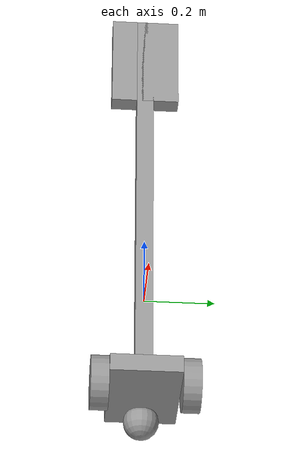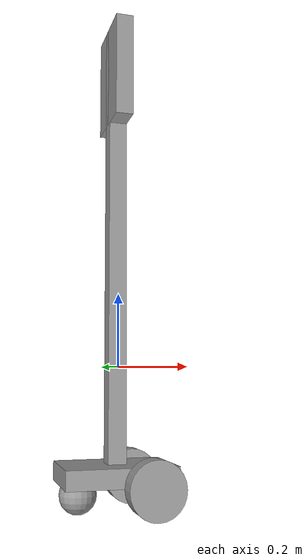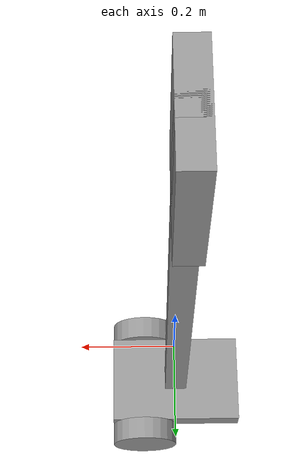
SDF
<?xml version='1.0'?>
<sdf version='1.6'>
  <model name='telepresenceV2'>
    <link name='link_2'>
      <pose frame=''>-0.108333 0 -0.329167 0 -0 0</pose>
      <inertial>
        <mass>1</mass>
        <inertia>
          <ixx>0.1</ixx>
          <ixy>0</ixy>
          <ixz>0</ixz>
          <iyy>0.1</iyy>
          <iyz>0</iyz>
          <izz>0.1</izz>
        </inertia>
        <pose frame=''>0 0 0 0 -0 0</pose>
      </inertial>
      <gravity>1</gravity>
      <self_collide>0</self_collide>
      <kinematic>0</kinematic>
      <visual name='visual'>
        <pose frame=''>0 0 0 0 -0 0</pose>
        <geometry>
          <sphere>
            <radius>0.05</radius>
          </sphere>
        </geometry>
        <material>
          <lighting>1</lighting>
          <script>
            <uri>file://media/materials/scripts/gazebo.material</uri>
            <name>Gazebo/Grey</name>
          </script>
          <ambient>0.3 0.3 0.3 1</ambient>
          <diffuse>0.7 0.7 0.7 1</diffuse>
          <specular>0.01 0.01 0.01 1</specular>
          <emissive>0 0 0 1</emissive>
          <shader type='vertex'>
            <normal_map>__default__</normal_map>
          </shader>
        </material>
        <cast_shadows>1</cast_shadows>
        <transparency>0</transparency>
      </visual>
      <collision name='collision'>
        <laser_retro>0</laser_retro>
        <max_contacts>10</max_contacts>
        <pose frame=''>0 0 0 0 -0 0</pose>
        <geometry>
          <sphere>
            <radius>0.05</radius>
          </sphere>
        </geometry>
        <surface>
          <friction>
            <ode>
              <mu>1</mu>
              <mu2>1</mu2>
              <fdir1>0 0 0</fdir1>
              <slip1>0</slip1>
              <slip2>0</slip2>
            </ode>
            <torsional>
              <coefficient>1</coefficient>
              <patch_radius>0</patch_radius>
              <surface_radius>0</surface_radius>
              <use_patch_radius>1</use_patch_radius>
              <ode>
                <slip>0</slip>
              </ode>
            </torsional>
          </friction>
          <bounce>
            <restitution_coefficient>0</restitution_coefficient>
            <threshold>1e+06</threshold>
          </bounce>
          <contact>
            <collide_without_contact>0</collide_without_contact>
            <collide_without_contact_bitmask>1</collide_without_contact_bitmask>
            <collide_bitmask>1</collide_bitmask>
            <ode>
              <soft_cfm>0</soft_cfm>
              <soft_erp>0.2</soft_erp>
              <kp>1e+13</kp>
              <kd>1</kd>
              <max_vel>0.01</max_vel>
              <min_depth>0</min_depth>
            </ode>
            <bullet>
              <split_impulse>1</split_impulse>
              <split_impulse_penetration_threshold>-0.01</split_impulse_penetration_threshold>
              <soft_cfm>0</soft_cfm>
              <soft_erp>0.2</soft_erp>
              <kp>1e+13</kp>
              <kd>1</kd>
            </bullet>
          </contact>
        </surface>
      </collision>
    </link>
    <link name='link_3'>
      <pose frame=''>0.066667 -0.125007 -0.304167 1.5707 -0 0</pose>
      <inertial>
        <mass>1</mass>
        <inertia>
          <ixx>0.145833</ixx>
          <ixy>0</ixy>
          <ixz>0</ixz>
          <iyy>0.145833</iyy>
          <iyz>0</iyz>
          <izz>0.125</izz>
        </inertia>
        <pose frame=''>0 0 0 0 -0 0</pose>
      </inertial>
      <gravity>1</gravity>
      <self_collide>0</self_collide>
      <kinematic>0</kinematic>
      <visual name='visual'>
        <pose frame=''>0 0 0 0 -0 0</pose>
        <geometry>
          <cylinder>
            <radius>0.075</radius>
            <length>0.05</length>
          </cylinder>
        </geometry>
        <material>
          <lighting>1</lighting>
          <script>
            <uri>file://media/materials/scripts/gazebo.material</uri>
            <name>Gazebo/Grey</name>
          </script>
          <ambient>0.3 0.3 0.3 1</ambient>
          <diffuse>0.7 0.7 0.7 1</diffuse>
          <specular>0.01 0.01 0.01 1</specular>
          <emissive>0 0 0 1</emissive>
          <shader type='vertex'>
            <normal_map>__default__</normal_map>
          </shader>
        </material>
        <cast_shadows>1</cast_shadows>
        <transparency>0</transparency>
      </visual>
      <collision name='collision'>
        <laser_retro>0</laser_retro>
        <max_contacts>10</max_contacts>
        <pose frame=''>0 0 0 0 -0 0</pose>
        <geometry>
          <cylinder>
            <radius>0.075</radius>
            <length>0.05</length>
          </cylinder>
        </geometry>
        <surface>
          <friction>
            <ode>
              <mu>1</mu>
              <mu2>1</mu2>
              <fdir1>0 0 0</fdir1>
              <slip1>0</slip1>
              <slip2>0</slip2>
            </ode>
            <torsional>
              <coefficient>1</coefficient>
              <patch_radius>0</patch_radius>
              <surface_radius>0</surface_radius>
              <use_patch_radius>1</use_patch_radius>
              <ode>
                <slip>0</slip>
              </ode>
            </torsional>
          </friction>
          <bounce>
            <restitution_coefficient>0</restitution_coefficient>
            <threshold>1e+06</threshold>
          </bounce>
          <contact>
            <collide_without_contact>0</collide_without_contact>
            <collide_without_contact_bitmask>1</collide_without_contact_bitmask>
            <collide_bitmask>1</collide_bitmask>
            <ode>
              <soft_cfm>0</soft_cfm>
              <soft_erp>0.2</soft_erp>
              <kp>1e+13</kp>
              <kd>1</kd>
              <max_vel>0.01</max_vel>
              <min_depth>0</min_depth>
            </ode>
            <bullet>
              <split_impulse>1</split_impulse>
              <split_impulse_penetration_threshold>-0.01</split_impulse_penetration_threshold>
              <soft_cfm>0</soft_cfm>
              <soft_erp>0.2</soft_erp>
              <kp>1e+13</kp>
              <kd>1</kd>
            </bullet>
          </contact>
        </surface>
      </collision>
    </link>
    <link name='link_3_clone'>
      <pose frame=''>0.066667 0.125007 -0.304167 1.5707 -0 0</pose>
      <inertial>
        <mass>1</mass>
        <inertia>
          <ixx>0.145833</ixx>
          <ixy>0</ixy>
          <ixz>0</ixz>
          <iyy>0.145833</iyy>
          <iyz>0</iyz>
          <izz>0.125</izz>
        </inertia>
        <pose frame=''>0 0 0 0 -0 0</pose>
      </inertial>
      <self_collide>0</self_collide>
      <kinematic>0</kinematic>
      <visual name='visual'>
        <pose frame=''>0 0 0 0 -0 0</pose>
        <geometry>
          <cylinder>
            <radius>0.075</radius>
            <length>0.05</length>
          </cylinder>
        </geometry>
        <material>
          <lighting>1</lighting>
          <script>
            <uri>file://media/materials/scripts/gazebo.material</uri>
            <name>Gazebo/Grey</name>
          </script>
          <ambient>0.3 0.3 0.3 1</ambient>
          <diffuse>0.7 0.7 0.7 1</diffuse>
          <specular>0.01 0.01 0.01 1</specular>
          <emissive>0 0 0 1</emissive>
          <shader type='vertex'>
            <normal_map>__default__</normal_map>
          </shader>
        </material>
        <cast_shadows>1</cast_shadows>
        <transparency>0</transparency>
      </visual>
      <collision name='collision'>
        <laser_retro>0</laser_retro>
        <max_contacts>10</max_contacts>
        <pose frame=''>0 0 0 0 -0 0</pose>
        <geometry>
          <cylinder>
            <radius>0.075</radius>
            <length>0.05</length>
          </cylinder>
        </geometry>
        <surface>
          <friction>
            <ode>
              <mu>1</mu>
              <mu2>1</mu2>
              <fdir1>0 0 0</fdir1>
              <slip1>0</slip1>
              <slip2>0</slip2>
            </ode>
            <torsional>
              <coefficient>1</coefficient>
              <patch_radius>0</patch_radius>
              <surface_radius>0</surface_radius>
              <use_patch_radius>1</use_patch_radius>
              <ode>
                <slip>0</slip>
              </ode>
            </torsional>
          </friction>
          <bounce>
            <restitution_coefficient>0</restitution_coefficient>
            <threshold>1e+06</threshold>
          </bounce>
          <contact>
            <collide_without_contact>0</collide_without_contact>
            <collide_without_contact_bitmask>1</collide_without_contact_bitmask>
            <collide_bitmask>1</collide_bitmask>
            <ode>
              <soft_cfm>0</soft_cfm>
              <soft_erp>0.2</soft_erp>
              <kp>1e+13</kp>
              <kd>1</kd>
              <max_vel>0.01</max_vel>
              <min_depth>0</min_depth>
            </ode>
            <bullet>
              <split_impulse>1</split_impulse>
              <split_impulse_penetration_threshold>-0.01</split_impulse_penetration_threshold>
              <soft_cfm>0</soft_cfm>
              <soft_erp>0.2</soft_erp>
              <kp>1e+13</kp>
              <kd>1</kd>
            </bullet>
          </contact>
        </surface>
      </collision>
    </link>
    <link name='link_4'>
      <pose frame=''>-0.008333 0 -0.279167 0 -0 0</pose>
      <inertial>
        <mass>1</mass>
        <inertia>
          <ixx>0.166667</ixx>
          <ixy>0</ixy>
          <ixz>0</ixz>
          <iyy>0.166667</iyy>
          <iyz>0</iyz>
          <izz>0.166667</izz>
        </inertia>
        <pose frame=''>0 0 0 0 -0 0</pose>
      </inertial>
      <gravity>1</gravity>
      <self_collide>0</self_collide>
      <kinematic>0</kinematic>
      <visual name='visual'>
        <pose frame=''>0 0 0 0 -0 0</pose>
        <geometry>
          <box>
            <size>0.3 0.2 0.05</size>
          </box>
        </geometry>
        <material>
          <lighting>1</lighting>
          <script>
            <uri>file://media/materials/scripts/gazebo.material</uri>
            <name>Gazebo/Grey</name>
          </script>
          <ambient>0.3 0.3 0.3 1</ambient>
          <diffuse>0.7 0.7 0.7 1</diffuse>
          <specular>0.01 0.01 0.01 1</specular>
          <emissive>0 0 0 1</emissive>
          <shader type='vertex'>
            <normal_map>__default__</normal_map>
          </shader>
        </material>
        <cast_shadows>1</cast_shadows>
        <transparency>0</transparency>
      </visual>
      <collision name='collision'>
        <laser_retro>0</laser_retro>
        <max_contacts>10</max_contacts>
        <pose frame=''>0 0 0 0 -0 0</pose>
        <geometry>
          <box>
            <size>0.3 0.2 0.05</size>
          </box>
        </geometry>
        <surface>
          <friction>
            <ode>
              <mu>1</mu>
              <mu2>1</mu2>
              <fdir1>0 0 0</fdir1>
              <slip1>0</slip1>
              <slip2>0</slip2>
            </ode>
            <torsional>
              <coefficient>1</coefficient>
              <patch_radius>0</patch_radius>
              <surface_radius>0</surface_radius>
              <use_patch_radius>1</use_patch_radius>
              <ode>
                <slip>0</slip>
              </ode>
            </torsional>
          </friction>
          <bounce>
            <restitution_coefficient>0</restitution_coefficient>
            <threshold>1e+06</threshold>
          </bounce>
          <contact>
            <collide_without_contact>0</collide_without_contact>
            <collide_without_contact_bitmask>1</collide_without_contact_bitmask>
            <collide_bitmask>1</collide_bitmask>
            <ode>
              <soft_cfm>0</soft_cfm>
              <soft_erp>0.2</soft_erp>
              <kp>1e+13</kp>
              <kd>1</kd>
              <max_vel>0.01</max_vel>
              <min_depth>0</min_depth>
            </ode>
            <bullet>
              <split_impulse>1</split_impulse>
              <split_impulse_penetration_threshold>-0.01</split_impulse_penetration_threshold>
              <soft_cfm>0</soft_cfm>
              <soft_erp>0.2</soft_erp>
              <kp>1e+13</kp>
              <kd>1</kd>
            </bullet>
          </contact>
        </surface>
      </collision>
    </link>
    <link name='link_5'>
      <pose frame=''>-0.008333 0 0.370833 0 -0 0</pose>
      <inertial>
        <mass>1</mass>
        <inertia>
          <ixx>0.166667</ixx>
          <ixy>0</ixy>
          <ixz>0</ixz>
          <iyy>0.166667</iyy>
          <iyz>0</iyz>
          <izz>0.166667</izz>
        </inertia>
        <pose frame=''>0 0 0 0 -0 0</pose>
      </inertial>
      <gravity>1</gravity>
      <self_collide>0</self_collide>
      <kinematic>0</kinematic>
      <visual name='visual'>
        <pose frame=''>0 0 0 0 -0 0</pose>
        <geometry>
          <box>
            <size>0.05 0.05 1.25</size>
          </box>
        </geometry>
        <material>
          <lighting>1</lighting>
          <script>
            <uri>file://media/materials/scripts/gazebo.material</uri>
            <name>Gazebo/Grey</name>
          </script>
          <ambient>0.3 0.3 0.3 1</ambient>
          <diffuse>0.7 0.7 0.7 1</diffuse>
          <specular>0.01 0.01 0.01 1</specular>
          <emissive>0 0 0 1</emissive>
          <shader type='vertex'>
            <normal_map>__default__</normal_map>
          </shader>
        </material>
        <cast_shadows>1</cast_shadows>
        <transparency>0</transparency>
      </visual>
      <collision name='collision'>
        <laser_retro>0</laser_retro>
        <max_contacts>10</max_contacts>
        <pose frame=''>0 0 0 0 -0 0</pose>
        <geometry>
          <box>
            <size>0.05 0.05 1.25</size>
          </box>
        </geometry>
        <surface>
          <friction>
            <ode>
              <mu>1</mu>
              <mu2>1</mu2>
              <fdir1>0 0 0</fdir1>
              <slip1>0</slip1>
              <slip2>0</slip2>
            </ode>
            <torsional>
              <coefficient>1</coefficient>
              <patch_radius>0</patch_radius>
              <surface_radius>0</surface_radius>
              <use_patch_radius>1</use_patch_radius>
              <ode>
                <slip>0</slip>
              </ode>
            </torsional>
          </friction>
          <bounce>
            <restitution_coefficient>0</restitution_coefficient>
            <threshold>1e+06</threshold>
          </bounce>
          <contact>
            <collide_without_contact>0</collide_without_contact>
            <collide_without_contact_bitmask>1</collide_without_contact_bitmask>
            <collide_bitmask>1</collide_bitmask>
            <ode>
              <soft_cfm>0</soft_cfm>
              <soft_erp>0.2</soft_erp>
              <kp>1e+13</kp>
              <kd>1</kd>
              <max_vel>0.01</max_vel>
              <min_depth>0</min_depth>
            </ode>
            <bullet>
              <split_impulse>1</split_impulse>
              <split_impulse_penetration_threshold>-0.01</split_impulse_penetration_threshold>
              <soft_cfm>0</soft_cfm>
              <soft_erp>0.2</soft_erp>
              <kp>1e+13</kp>
              <kd>1</kd>
            </bullet>
          </contact>
        </surface>
      </collision>
    </link>
    <link name='link_6'>
      <pose frame=''>-0.008333 0 0.845833 0 -0 0</pose>
      <inertial>
        <mass>1</mass>
        <inertia>
          <ixx>0.166667</ixx>
          <ixy>0</ixy>
          <ixz>0</ixz>
          <iyy>0.166667</iyy>
          <iyz>0</iyz>
          <izz>0.166667</izz>
        </inertia>
        <pose frame=''>0 0 0 0 -0 0</pose>
      </inertial>
      <gravity>1</gravity>
      <self_collide>0</self_collide>
      <kinematic>0</kinematic>
      <visual name='visual'>
        <pose frame=''>0 0 0 0 -0 0</pose>
        <geometry>
          <box>
            <size>0.05 0.2 0.3</size>
          </box>
        </geometry>
        <material>
          <lighting>1</lighting>
          <script>
            <uri>file://media/materials/scripts/gazebo.material</uri>
            <name>Gazebo/Grey</name>
          </script>
          <ambient>0.3 0.3 0.3 1</ambient>
          <diffuse>0.7 0.7 0.7 1</diffuse>
          <specular>0.01 0.01 0.01 1</specular>
          <emissive>0 0 0 1</emissive>
          <shader type='vertex'>
            <normal_map>__default__</normal_map>
          </shader>
        </material>
        <cast_shadows>1</cast_shadows>
        <transparency>0</transparency>
      </visual>
      <collision name='collision'>
        <laser_retro>0</laser_retro>
        <max_contacts>10</max_contacts>
        <pose frame=''>0 0 0 0 -0 0</pose>
        <geometry>
          <box>
            <size>0.05 0.2 0.3</size>
          </box>
        </geometry>
        <surface>
          <friction>
            <ode>
              <mu>1</mu>
              <mu2>1</mu2>
              <fdir1>0 0 0</fdir1>
              <slip1>0</slip1>
              <slip2>0</slip2>
            </ode>
            <torsional>
              <coefficient>1</coefficient>
              <patch_radius>0</patch_radius>
              <surface_radius>0</surface_radius>
              <use_patch_radius>1</use_patch_radius>
              <ode>
                <slip>0</slip>
              </ode>
            </torsional>
          </friction>
          <bounce>
            <restitution_coefficient>0</restitution_coefficient>
            <threshold>1e+06</threshold>
          </bounce>
          <contact>
            <collide_without_contact>0</collide_without_contact>
            <collide_without_contact_bitmask>1</collide_without_contact_bitmask>
            <collide_bitmask>1</collide_bitmask>
            <ode>
              <soft_cfm>0</soft_cfm>
              <soft_erp>0.2</soft_erp>
              <kp>1e+13</kp>
              <kd>1</kd>
              <max_vel>0.01</max_vel>
              <min_depth>0</min_depth>
            </ode>
            <bullet>
              <split_impulse>1</split_impulse>
              <split_impulse_penetration_threshold>-0.01</split_impulse_penetration_threshold>
              <soft_cfm>0</soft_cfm>
              <soft_erp>0.2</soft_erp>
              <kp>1e+13</kp>
              <kd>1</kd>
            </bullet>
          </contact>
        </surface>
      </collision>
    </link>
    <joint name='link_4_JOINT_10' type='ball'>
      <parent>link_4</parent>
      <child>link_2</child>
      <pose frame=''>0 0 0 0 -0 0</pose>
      <physics>
        <ode>
          <limit>
            <cfm>0</cfm>
            <erp>0.2</erp>
          </limit>
          <suspension>
            <cfm>0</cfm>
            <erp>0.2</erp>
          </suspension>
        </ode>
      </physics>
    </joint>
    <joint name='link_4_JOINT_11' type='fixed'>
      <parent>link_4</parent>
      <child>link_5</child>
      <pose frame=''>0 0 0 0 -0 0</pose>
      <physics>
        <ode>
          <limit>
            <cfm>0</cfm>
            <erp>0.2</erp>
          </limit>
          <suspension>
            <cfm>0</cfm>
            <erp>0.2</erp>
          </suspension>
        </ode>
      </physics>
    </joint>
    <joint name='link_4_JOINT_8' type='revolute'>
      <parent>link_4</parent>
      <child>link_3</child>
      <pose frame=''>0 0 0 0 -0 0</pose>
      <axis>
        <xyz>0 0 1</xyz>
        <use_parent_model_frame>0</use_parent_model_frame>
        <limit>
          <lower>-1.79769e+308</lower>
          <upper>1.79769e+308</upper>
          <effort>-1</effort>
          <velocity>-1</velocity>
        </limit>
        <dynamics>
          <spring_reference>0</spring_reference>
          <spring_stiffness>0</spring_stiffness>
          <damping>0</damping>
        </dynamics>
      </axis>
      <physics>
        <ode>
          <limit>
            <cfm>0</cfm>
            <erp>0.2</erp>
          </limit>
          <suspension>
            <cfm>0</cfm>
            <erp>0.2</erp>
          </suspension>
        </ode>
      </physics>
    </joint>
    <joint name='link_4_JOINT_9' type='revolute'>
      <parent>link_4</parent>
      <child>link_3_clone</child>
      <pose frame=''>0 0 0 0 -0 0</pose>
      <axis>
        <xyz>0 0 1</xyz>
        <use_parent_model_frame>0</use_parent_model_frame>
        <limit>
          <lower>-1.79769e+308</lower>
          <upper>1.79769e+308</upper>
          <effort>-1</effort>
          <velocity>-1</velocity>
        </limit>
        <dynamics>
          <spring_reference>0</spring_reference>
          <spring_stiffness>0</spring_stiffness>
          <damping>0</damping>
        </dynamics>
      </axis>
      <physics>
        <ode>
          <limit>
            <cfm>0</cfm>
            <erp>0.2</erp>
          </limit>
          <suspension>
            <cfm>0</cfm>
            <erp>0.2</erp>
          </suspension>
        </ode>
      </physics>
    </joint>
    <joint name='link_5_JOINT_12' type='fixed'>
      <parent>link_5</parent>
      <child>link_6</child>
      <pose frame=''>0 0 0 0 -0 0</pose>
      <physics>
        <ode>
          <limit>
            <cfm>0</cfm>
            <erp>0.2</erp>
          </limit>
          <suspension>
            <cfm>0</cfm>
            <erp>0.2</erp>
          </suspension>
        </ode>
      </physics>
    </joint>
    <static>0</static>
    <allow_auto_disable>1</allow_auto_disable>
  </model>
</sdf>
